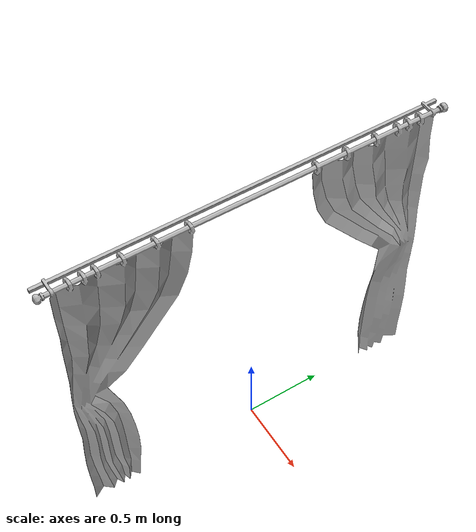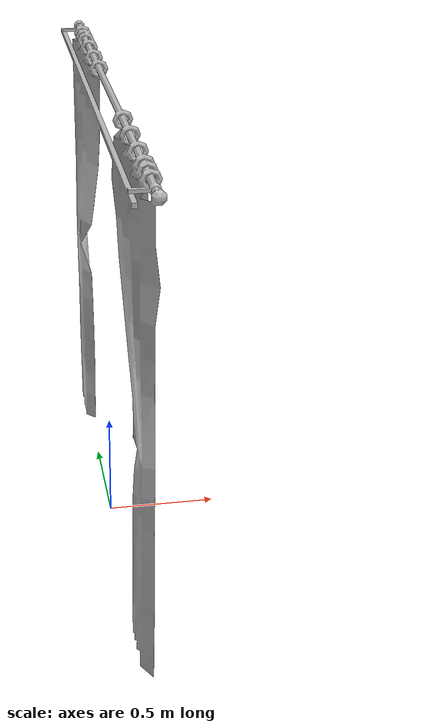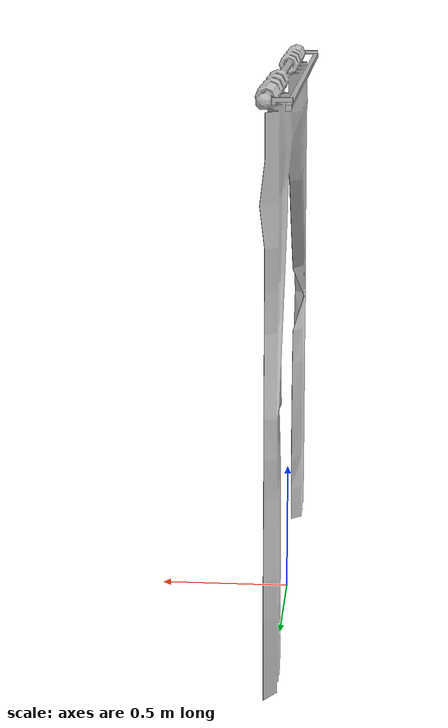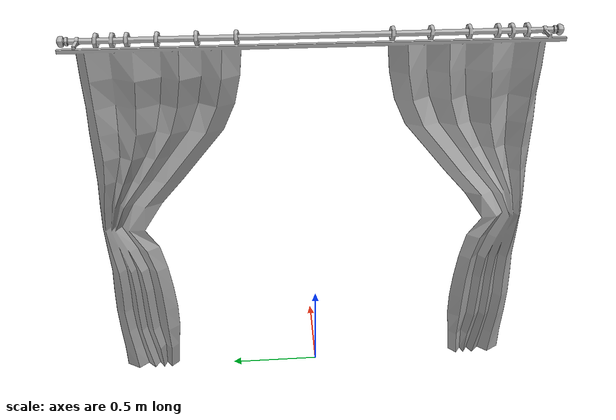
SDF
<?xml version='1.0'?>
<sdf version='1.4'>
  <model name='275'>
    <pose>0 0 0 0 0 0</pose>
    <static>true</static>
    <link name='link'>
      <collision name='collision'>
        <pose>0 0 0 0 0 0</pose>
        <geometry>
          <box>
            <size>0.12888 2.44974 2</size>
          </box>
        </geometry>
      </collision>
      <visual name='visual'>
        <pose>0 0 0 0 0 0</pose>
        <geometry>
          <mesh><uri>model://275/275.dae</uri></mesh>
        </geometry>
      </visual>
    </link>
  </model>
</sdf>
